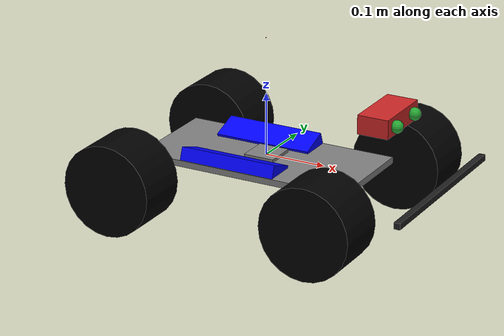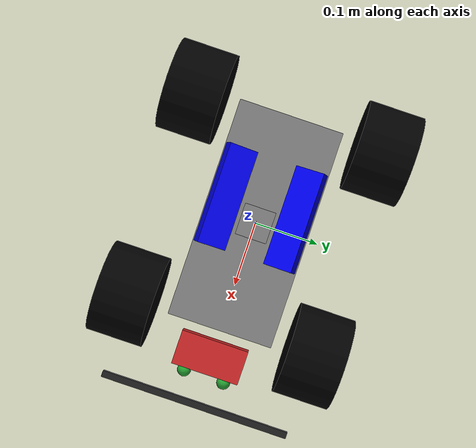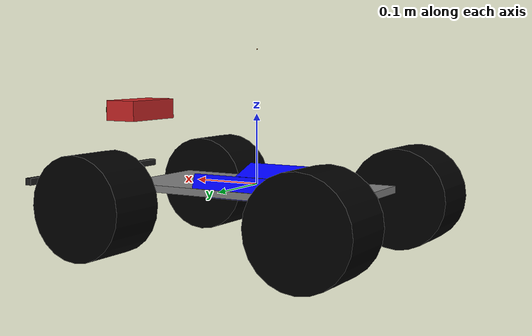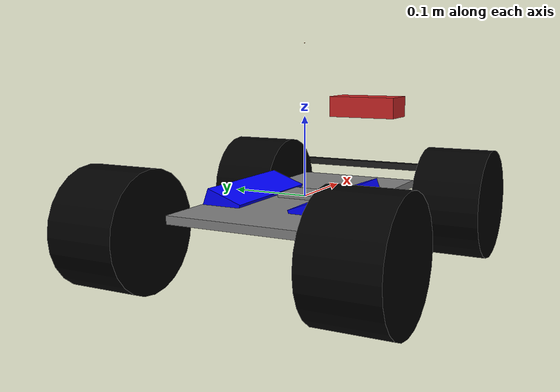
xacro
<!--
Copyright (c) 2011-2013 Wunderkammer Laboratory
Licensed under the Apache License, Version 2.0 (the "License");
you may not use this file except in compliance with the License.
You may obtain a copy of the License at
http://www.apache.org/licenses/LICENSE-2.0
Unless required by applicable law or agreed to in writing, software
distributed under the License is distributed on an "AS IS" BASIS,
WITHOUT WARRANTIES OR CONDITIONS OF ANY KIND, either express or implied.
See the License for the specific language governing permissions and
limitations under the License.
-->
<?xml version="1.0"?>

<robot name="em_3905" xmlns:xacro="http://www.ros.org/wiki/xacro">
  <!-- Degree-to-radian conversions -->
  <xacro:property name="degrees_45" value="0.785398163"/>
  <xacro:property name="degrees_90" value="1.57079633"/>

  <!-- chassis_length is measured along the x axis, chassis_width
       along the y axis, and chassis_height along the z axis. -->
  <!--xacro:property name="chassis_length" value="0.258"/-->
  <xacro:property name="chassis_length" value="0.35"/>
  <xacro:property name="chassis_width" value="0.168"/>
  <xacro:property name="chassis_height" value="0.01"/>
  <xacro:property name="chassis_mass" value="2.788"/>

  <xacro:property name="battery_x_offset" value="0.055"/>
  <xacro:property name="battery_dist" value="0.065"/>
  <xacro:property name="battery_comp_depth" value="0.02"/>
  <xacro:property name="battery_comp_angle" value="0.34906585"/>
  <xacro:property name="battery_length" value="0.16"/>
  <xacro:property name="battery_width" value="0.047"/>
  <xacro:property name="battery_height" value="0.024"/>
  <xacro:property name="battery_mass" value="0.5025"/>

  <xacro:property name="hub_dia" value="0.09652"/>
  <xacro:property name="tire_dia" value="0.14605"/>
  <xacro:property name="tire_width" value="0.0889"/>
  <xacro:property name="hex_hub_depth" value="0.01445"/>
  <xacro:property name="wheel_mass" value="0.29"/>

  <xacro:property name="wheelbase" value="0.335"/>
  <xacro:property name="hex_hub_dist" value="0.365"/>
  <xacro:property name="axle_length" value="0.03"/>
  <xacro:property name="wheel_travel" value="0.084"/>
  <xacro:property name="shock_z_offset" value="0.0655"/>

  <xacro:property name="shock_eff_limit" value="12.5106"/>
  <xacro:property name="shock_vel_limit" value="1000"/>

  <xacro:property name="axle_eff_limit" value="5.12766"/>
  <xacro:property name="axle_vel_limit" value="244.8696"/>

  <!-- These constants are used to simulate a Traxxas 2056 servo operated at
       6 V. servo_stall_torque is measured in N m. servo_no_load_speed is
       measured in rad/s. -->
  <xacro:property name="servo_stall_torque" value="0.5649"/>
  <xacro:property name="servo_no_load_speed" value="4.553"/>

  <!-- ctrl_period is gazebo_ros_control's control period. Unit: hertz. -->
  <xacro:property name="ctrl_period" value="0.01"/>

  <material name="battery_mat">
    <color rgba="0 0 1 1"/>
  </material>
  <material name="chassis_mat">
    <color rgba="0.5 0.5 0.5 1"/>
  </material>
  <material name="tire_mat">
    <color rgba="0 0 0 1"/>
  </material>

  <!-- Null inertial element. This is needed to make the model work with
       Gazebo. -->
  <xacro:macro name="null_inertial">
    <inertial>
      <mass value="0.001"/>
      <inertia ixx="0.001" ixy="0" ixz="0" iyy="0.001" iyz="0" izz="0.001"/>
    </inertial>
  </xacro:macro>

  <!-- Inertia of a solid cuboid. Width is measured along the x axis, depth
       along the y axis, and height along the z axis. -->
  <xacro:macro name="solid_cuboid_inertial"
               params="width depth height mass *origin">
    <inertial>
      <xacro:insert_block name="origin"/>
      <mass value="${mass}"/>
      <inertia ixx="${mass * (depth * depth + height * height) / 12}"
               ixy="0" ixz="0"
               iyy="${mass * (width * width + height * height) / 12}"
               iyz="0"
               izz="${mass * (width * width + depth * depth) / 12}"/>
    </inertial>
  </xacro:macro>

  <xacro:macro name="thick_walled_tube_inertial"
               params="inner_rad outer_rad height mass">
    <inertial>
      <mass value="${mass}"/>
      <inertia ixx="${(1 / 12) * mass * (3 * (inner_rad * inner_rad +
                    outer_rad * outer_rad) + height * height)}"
               ixy="0" ixz="0"
               iyy="${(1 / 12) * mass * (3 * (inner_rad * inner_rad +
                    outer_rad * outer_rad) + height * height)}"
               iyz="0"
               izz="${mass * (inner_rad * inner_rad +
                    outer_rad * outer_rad) / 2}"/>
    </inertial>
  </xacro:macro>

  <!-- Battery -->
  <xacro:macro name="battery" params="prefix reflect">
    <joint name="chassis_to_${prefix}_battery" type="fixed">
      <parent link="chassis"/>
      <child link="${prefix}_battery_offset"/>
      <origin xyz="${battery_x_offset - battery_length / 2}
                   ${reflect * battery_dist / 2}
                   0"
              rpy="${reflect * battery_comp_angle} 0 0"/>
    </joint>

    <link name="${prefix}_battery_offset">
      <xacro:null_inertial/>
    </link>

    <joint name="offset_to_${prefix}_battery" type="fixed">
      <parent link="${prefix}_battery_offset"/>
      <child link="${prefix}_battery"/>
      <origin xyz="0
                   ${reflect * battery_width / 2}
                   ${(battery_height / 2) - battery_comp_depth}"/>
    </joint>

    <link name="${prefix}_battery">
      <visual>
        <geometry>
          <box size="${battery_length} ${battery_width} ${battery_height}"/>
        </geometry>
        <material name="battery_mat"/>
      </visual>

      <collision>
        <geometry>
          <box size="${battery_length} ${battery_width} ${battery_height}"/>
        </geometry>
      </collision>

      <xacro:solid_cuboid_inertial
         width="${battery_length}" depth="${battery_width}"
         height="${battery_height}" mass="${battery_mass}">
        <origin/>
      </xacro:solid_cuboid_inertial>
    </link>

    <gazebo reference="${prefix}_battery">
      <material>Gazebo/Blue</material>
    </gazebo>
  </xacro:macro>

  <!-- Shock absorber -->
  <xacro:macro name="shock"
               params="lr_prefix fr_prefix lr_reflect fr_reflect child">
    <joint name="${lr_prefix}_${fr_prefix}_shock" type="prismatic">
      <parent link="chassis"/>
      <child link="${child}"/>

      <origin xyz="${fr_reflect * wheelbase / 2}
                   ${lr_reflect * ((hex_hub_dist / 2) - axle_length)}
                   ${(wheel_travel / 2) - shock_z_offset}"/>
      <axis xyz="0 0 -1"/>
      <limit lower="${-wheel_travel / 2}" upper="${wheel_travel / 2}"
             effort="${shock_eff_limit}" velocity="${shock_vel_limit}"/>
    </joint>
    <transmission name="${lr_prefix}_${fr_prefix}_shock_trans">
      <type>transmission_interface/SimpleTransmission</type>
      <joint name="${lr_prefix}_${fr_prefix}_shock">
        <hardwareInterface>hardware_interface/EffortJointInterface</hardwareInterface>
      </joint>
      <actuator name="${lr_prefix}_${fr_prefix}_shock_act">
        <hardwareInterface>EffortJointInterface</hardwareInterface>
        <mechanicalReduction>1</mechanicalReduction>
      </actuator>
    </transmission>
  </xacro:macro>

  <!-- The "wheel" macro defines an axle carrier, axle, and wheel. -->
  <xacro:macro name="wheel" params="lr_prefix fr_prefix lr_reflect">
    <link name="${lr_prefix}_${fr_prefix}_axle_carrier">
      <xacro:null_inertial/>
    </link>

    <!-- The left and right axles have the same axis so that identical
         rotation values cause the wheels to rotate in the same direction. -->
    <joint name="${lr_prefix}_${fr_prefix}_axle" type="continuous">
      <parent link="${lr_prefix}_${fr_prefix}_axle_carrier"/>
      <child link="${lr_prefix}_${fr_prefix}_wheel"/>
      <origin rpy="${degrees_90} 0 0"/>
      <axis xyz="0 0 -1"/>
      <limit effort="${axle_eff_limit}" velocity="${axle_vel_limit}"/>
    </joint>
    <transmission name="${lr_prefix}_${fr_prefix}_axle_trans">
      <type>transmission_interface/SimpleTransmission</type>
      <joint name="${lr_prefix}_${fr_prefix}_axle">
        <hardwareInterface>hardware_interface/EffortJointInterface</hardwareInterface>
      </joint>
      <actuator name="${lr_prefix}_${fr_prefix}_axle_act">
        <hardwareInterface>EffortJointInterface</hardwareInterface>
        <mechanicalReduction>1</mechanicalReduction>
      </actuator>
    </transmission>

    <link name="${lr_prefix}_${fr_prefix}_wheel">
      <visual>
        <origin xyz="0
                     ${lr_reflect * (axle_length - (tire_width /
                     2 - hex_hub_depth))}
                     0"/>
        <geometry>
          <cylinder radius="${tire_dia / 2}" length="${tire_width}"/>
        </geometry>
        <material name="tire_mat"/>
      </visual>

      <collision>
        <origin xyz="0
                     ${lr_reflect * (axle_length - (tire_width /
                     2 - hex_hub_depth))}
                     0"/>
        <geometry>
          <cylinder radius="${tire_dia / 2}" length="${tire_width}"/>
        </geometry>
      </collision>

      <xacro:thick_walled_tube_inertial
          inner_rad="${hub_dia / 2}" outer_rad="${tire_dia / 2}"
          height="${tire_width}" mass="${wheel_mass}"/>
    </link>

    <gazebo reference="${lr_prefix}_${fr_prefix}_wheel">
      <material>Gazebo/Black</material>
    </gazebo>
  </xacro:macro>

  <!-- Front wheel -->
  <xacro:macro name="front_wheel"
               params="lr_prefix fr_prefix lr_reflect fr_reflect">
    <xacro:shock lr_prefix="${lr_prefix}" fr_prefix="${fr_prefix}"
                 lr_reflect="${lr_reflect}" fr_reflect="${fr_reflect}"
                 child="${lr_prefix}_steering_link"/>

    <link name="${lr_prefix}_steering_link">
      <xacro:null_inertial/>
    </link>

    <joint name="${lr_prefix}_steering_joint" type="revolute">
      <parent link="${lr_prefix}_steering_link"/>
      <child link="${lr_prefix}_${fr_prefix}_axle_carrier"/>
      <axis xyz="0 0 1"/>
      <limit lower="${-degrees_45}" upper="${degrees_45}"
             effort="${servo_stall_torque}" velocity="${servo_no_load_speed}"/>
    </joint>
    <transmission name="${lr_prefix}_steering_trans">
      <type>transmission_interface/SimpleTransmission</type>
      <joint name="${lr_prefix}_steering_joint">
        <hardwareInterface>hardware_interface/EffortJointInterface</hardwareInterface>
      </joint>
      <actuator name="${lr_prefix}_steering_act">
        <hardwareInterface>EffortJointInterface</hardwareInterface>
        <mechanicalReduction>1</mechanicalReduction>
      </actuator>
    </transmission>

    <xacro:wheel lr_prefix="${lr_prefix}" fr_prefix="${fr_prefix}"
                 lr_reflect="${lr_reflect}"/>
  </xacro:macro>

  <!-- Rear wheel -->
  <xacro:macro name="rear_wheel"
               params="lr_prefix fr_prefix lr_reflect fr_reflect">
    <xacro:shock lr_prefix="${lr_prefix}" fr_prefix="${fr_prefix}"
                 lr_reflect="${lr_reflect}" fr_reflect="${fr_reflect}"
                 child="${lr_prefix}_${fr_prefix}_axle_carrier"/>
    <xacro:wheel lr_prefix="${lr_prefix}" fr_prefix="${fr_prefix}"
                 lr_reflect="${lr_reflect}"/>
  </xacro:macro>

  <!-- base_link must have geometry so that its axes can be displayed in
       rviz. -->
  <link name="base_link">
    <visual>
      <geometry>
        <box size="0.05 0.05 0.01"/>
      </geometry>
      <material name="chassis_mat"/>
    </visual>
  </link>
  <gazebo reference="base_link">
    <material>Gazebo/Green</material>
  </gazebo>

  <link name="bumper_link">
	    <visual>
	        <geometry>
	            <box size="0.01 0.3 0.01"/>
	        </geometry>
	    </visual>
	    <collision>
	        <!-- origin is relative -->
	        <geometry>
	            <box size="0.01 0.3 0.01"/>
	        </geometry>
	    </collision>
	</link>
	<gazebo reference="bumper_link">
    	<material>Gazebo/Black</material>
  	</gazebo>
   <joint name="baselink_to_bumper" type="fixed">
    <parent link="base_link"/>
    <child link="bumper_link"/>
    <origin xyz="${chassis_length /2 + 0.12} 0.0 0.0" rpy="0.0 0.0 0.0"/>
   </joint>

  <link name="eye_link">
	    <visual>
	        <geometry>
	            <box size="0.05 0.1 0.03"/>
	        </geometry>
	    </visual>
	    <collision>
	        <!-- origin is relative -->
	        <geometry>
	            <box size="0.05 0.1 0.03"/>
	        </geometry>
	    </collision>
	</link>
	  <gazebo reference="eye_link">
    <material>Gazebo/Red</material>
  </gazebo>

	<link name="left_eye">
	    <visual>
	        <geometry>
	            <sphere radius="0.01"/>
	        </geometry>
	    </visual>
	</link>
	<gazebo reference="left_eye">
    	<material>Gazebo/Green</material>
  	</gazebo>
	<link name="right_eye">
	    <visual>
	        <geometry>
	            <sphere radius="0.01"/>
	        </geometry>
	    </visual>
	</link>
	<gazebo reference="right_eye">
    	<material>Gazebo/Green</material>
  	</gazebo>

   <joint name="left_eye_to_head" type="fixed">
    <parent link="eye_link"/>
    <child link="left_eye"/>
    <origin xyz="0.03 0.03 0.0" rpy="0.0 0.0 0.0"/>
   </joint>

   <joint name="right_eye_to_head" type="fixed">
    <parent link="eye_link"/>
    <child link="right_eye"/>
    <origin xyz="0.03 -0.03 0.0" rpy="0.0 0.0 0.0"/>
   </joint>

   <joint name="base_link_to_eye" type="fixed">
    <parent link="base_link"/>
    <child link="eye_link"/>
    <origin xyz="${chassis_length /2 + 0.03} 0.0 0.1" rpy="0.0 0.0 0.0"/>
   </joint>

    <joint name="imu_joint" type="fixed">
		<axis xyz="1 0 0"/>
		<origin xyz="0 0 0.19"/>
		<parent link="base_link"/>
		<child link="imu_link"/>
	</joint>

	<link name="imu_link">
	  <inertial>
	    <mass value="0.001"/>
	    <origin rpy="0 0 0" xyz="0 0 0"/>
	    <inertia ixx="0.0001" ixy="0" ixz="0" iyy="0.000001" iyz="0" izz="0.0001"/>
	  </inertial>
	  <visual>
	    <origin rpy="0 0 0" xyz="0 0 0"/>
	    <geometry>
	      <box size="0.001 0.001 0.001"/>
	    </geometry>
	  </visual>
	  <collision>
	    <origin rpy="0 0 0" xyz="0 0 0"/>
	    <geometry>
	      <box size=".001 .001 .001"/>
	    </geometry>
	  </collision>
	</link>

  <!-- Chassis -->
  <link name="chassis">
    <visual>
      <origin xyz="0 0 ${-chassis_height / 2}"/>
      <geometry>
        <box size="${chassis_length} ${chassis_width} ${chassis_height}"/>
      </geometry>
      <material name="chassis_mat"/>
    </visual>

    <collision>
      <origin xyz="0 0 ${-chassis_height / 2}"/>
      <geometry>
        <box size="${chassis_length} ${chassis_width} ${chassis_height}"/>
      </geometry>
    </collision>

    <xacro:solid_cuboid_inertial
        width="${chassis_length}" depth="${chassis_width}"
        height="${chassis_height}" mass="${chassis_mass}">
      <origin xyz="0 0 ${-chassis_height / 2}"/>
    </xacro:solid_cuboid_inertial>
  </link>
  <gazebo reference="chassis">
    <material>Gazebo/Grey</material>
  </gazebo>

  <joint name="base_link_to_chasis" type="fixed">
    <parent link="base_link"/>
    <child link="chassis"/>
  </joint>

  <!-- Batteries -->
  <xacro:battery prefix="left" reflect="1"/>
  <xacro:battery prefix="right" reflect="-1"/>

  <!-- Wheels -->
  <xacro:front_wheel lr_prefix="left" fr_prefix="front"
                     lr_reflect="1" fr_reflect="1"/>
  <xacro:front_wheel lr_prefix="right" fr_prefix="front"
                     lr_reflect="-1" fr_reflect="1"/>
  <xacro:rear_wheel lr_prefix="left" fr_prefix="rear"
                    lr_reflect="1" fr_reflect="-1"/>
  <xacro:rear_wheel lr_prefix="right" fr_prefix="rear"
                    lr_reflect="-1" fr_reflect="-1"/>

  <gazebo>
    <plugin name="gazebo_ros_control" filename="libgazebo_ros_control.so">
    </plugin>
  </gazebo>

  <!-- Camera left eye-->
    <gazebo reference="left_eye">
        <sensor type="camera" name="left_camera">
            <update_rate>30.0</update_rate>
            <camera name="head">
                <horizontal_fov>1.3962634</horizontal_fov>
                <image>
                    <width>320</width>
                    <height>240</height>
                    <format>R8G8B8</format>
                </image>
                <clip>
                    <near>0.02</near>
                    <far>300</far>
                </clip>
                <noise>
                    <type>gaussian</type>
                    <mean>0.0</mean>
                    <stddev>0.007</stddev>
                </noise>
            </camera>
            <plugin name="camera_controller" filename="libgazebo_ros_camera.so">
                <alwaysOn>true</alwaysOn>
                <updateRate>0.0</updateRate>
                <cameraName>sensors/left_camera</cameraName>
                <imageTopicName>image_raw</imageTopicName>
                <cameraInfoTopicName>camera_info</cameraInfoTopicName>
                <frameName>camera_link</frameName>
                <hackBaseline>0.07</hackBaseline>
                <distortionK1>0.0</distortionK1>
                <distortionK2>0.0</distortionK2>
                <distortionK3>0.0</distortionK3>
                <distortionT1>0.0</distortionT1>
                <distortionT2>0.0</distortionT2>
            </plugin>
        </sensor>
    </gazebo>

    <!-- Camera right eye-->
    <gazebo reference="right_eye">
        <sensor type="camera" name="right_camera">
            <update_rate>30.0</update_rate>
            <camera name="head">
                <horizontal_fov>1.3962634</horizontal_fov>
                <image>
                    <width>320</width>
                    <height>240</height>
                    <format>R8G8B8</format>
                </image>
                <clip>
                    <near>0.02</near>
                    <far>300</far>
                </clip>
                <noise>
                    <type>gaussian</type>
                    <mean>0.0</mean>
                    <stddev>0.007</stddev>
                </noise>
            </camera>
            <plugin name="camera_controller" filename="libgazebo_ros_camera.so">
                <alwaysOn>true</alwaysOn>
                <updateRate>0.0</updateRate>
                <cameraName>sensors/right_camera</cameraName>
                <imageTopicName>image_raw</imageTopicName>
                <cameraInfoTopicName>camera_info</cameraInfoTopicName>
                <frameName>camera_link</frameName>
                <hackBaseline>0.07</hackBaseline>
                <distortionK1>0.0</distortionK1>
                <distortionK2>0.0</distortionK2>
                <distortionK3>0.0</distortionK3>
                <distortionT1>0.0</distortionT1>
                <distortionT2>0.0</distortionT2>
            </plugin>
        </sensor>
    </gazebo>

  <!-- imu sensor-->
  <gazebo>
    <plugin name="imu_plugin" filename="libgazebo_ros_imu.so">
        <alwaysOn>true</alwaysOn>
        <bodyName>imu_link</bodyName>
        <topicName>imu_data</topicName>
        <serviceName>imu_service</serviceName>
        <gaussianNoise>0.0</gaussianNoise>
        <updateRate>30.0</updateRate>
    </plugin>
</gazebo>

</robot>
